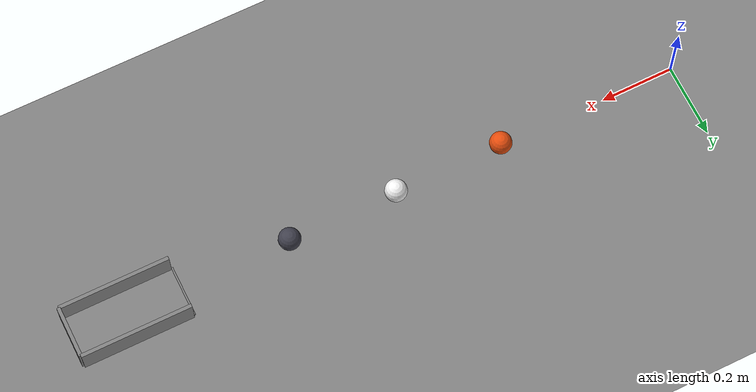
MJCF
<mujoco model="three_balls_into_a_cup">
  <compiler angle="radian"/>
  <option timestep="0.002"/>
  <worldbody>
    <geom name="floor" type="plane" size="6 6 0.1" friction="0.8 0.005 0.002"/>
    <body name="ball1" pos="0.5 0 0.03">
      <freejoint/>
      <geom name="ball1" type="sphere" pos="0 0 0" size="0.03" mass="0.1" condim="6" friction="0.8 0.005 0.002" solref="0.01 0.2" rgba="0.9 0.3 0.05 1"/>
    </body>
    <body name="ball2" pos="0.8 0 0.03">
      <freejoint/>
      <geom name="ball2" type="sphere" pos="0 0 0" size="0.03" mass="0.1" condim="6" friction="0.8 0.005 0.002" solref="0.01 0.2" rgba="0.95 0.95 0.95 1"/>
    </body>
    <body name="ball3" pos="1.1 0 0.03">
      <freejoint/>
      <geom name="ball3" type="sphere" pos="0 0 0" size="0.03" mass="0.1" condim="6" friction="0.8 0.005 0.002" solref="0.01 0.2" rgba="0.25 0.25 0.3 1"/>
    </body>
    <body name="cup">
      <geom name="cup_base" type="box" pos="1.55 0 0.0025" size="0.15 0.07 0.0025" friction="0.9 0.02 0.01" solref="0.01 1"/>
      <geom name="cup_near_wall" type="box" pos="1.4 0 0.0025" size="0.005 0.07 0.0025" solref="0.01 1"/>
      <geom name="cup_far_wall" type="box" pos="1.7 0 0.04" size="0.005 0.07 0.04" solref="0.01 1"/>
      <geom name="cup_left_wall" type="box" pos="1.55 0.07 0.04" size="0.15 0.005 0.04" solref="0.01 1"/>
      <geom name="cup_right_wall" type="box" pos="1.55 -0.07 0.04" size="0.15 0.005 0.04" solref="0.01 1"/>
    </body>
  </worldbody>
  <keyframe>
    <key name="start" qpos="0.5 0 0.03 1 0 0 0 0.8 0 0.03 1 0 0 0 1.1 0 0.03 1 0 0 0" qvel="5 0 0 0 0 0 0 0 0 0 0 0 0 0 0 0 0 0"/>
  </keyframe>
</mujoco>
